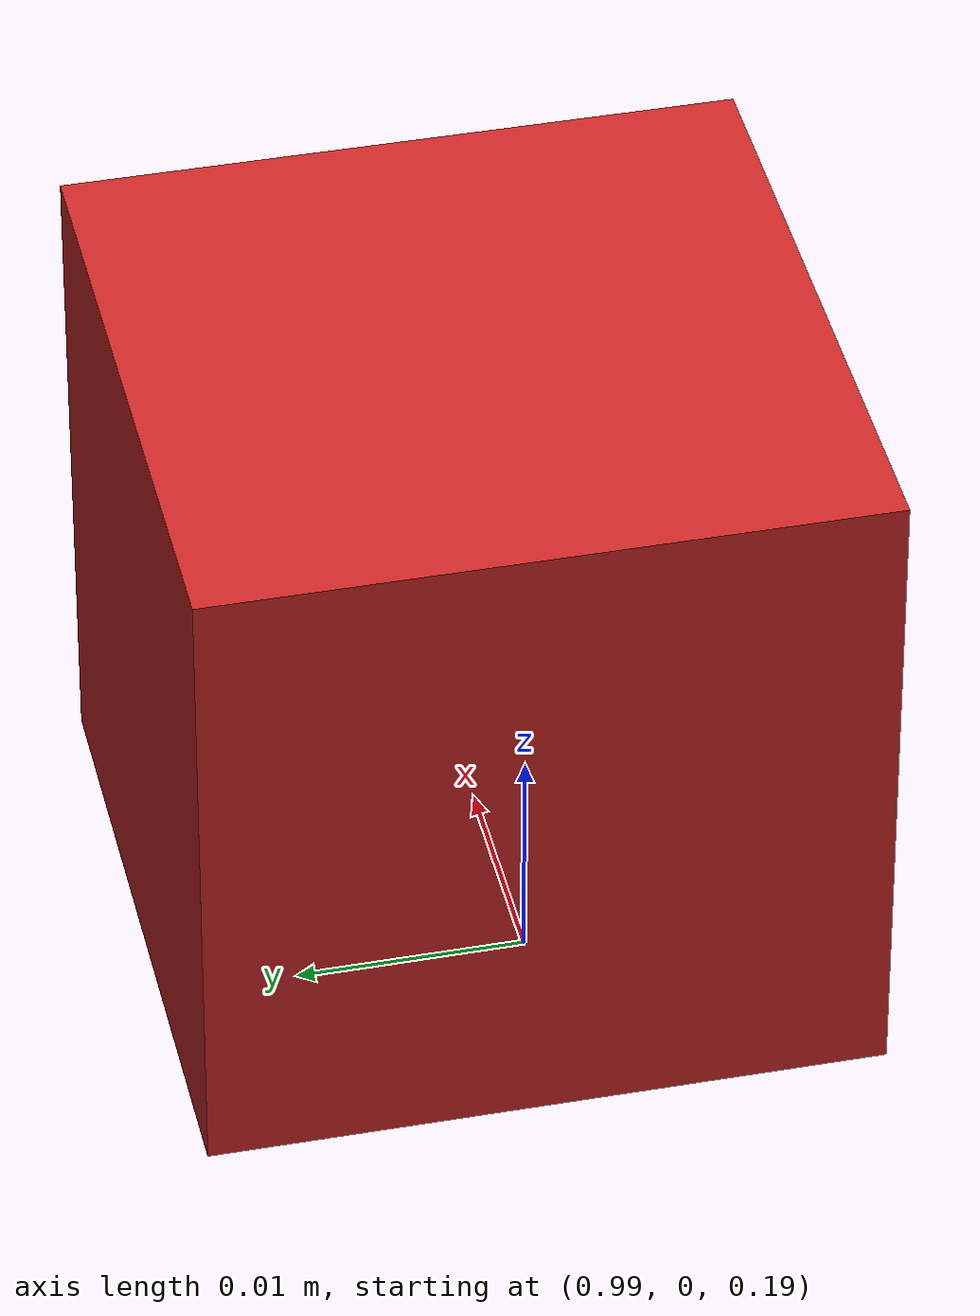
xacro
<?xml version="1.0"?>
<robot xmlns:xacro="http://www.ros.org/wiki/xacro" name="simple_cam">
    <link name="world">
    </link>

    <!-- Cameras -->
    <joint name="camera_joint1" type="fixed">
      <axis xyz="0 0 0" />
      <origin xyz="1 0 0.2" rpy="0 0 ${pi}"/>
      <parent link="world"/>
      <child link="camera_link1"/>
    </joint>

    <link name="camera_link1">
      <collision>
        <origin xyz="0 0 0" rpy="0 0 0"/>
        <geometry>
      <box size="0.03 0.03 0.03"/>
        </geometry>
      </collision>

      <visual>
        <origin xyz="0 0 0" rpy="0 0 0"/>
        <geometry>
      <box size="0.03 0.03 0.03"/>
        </geometry>
        <material name="red"/>
      </visual>

        <inertial>
          <mass value="1e-5" />
          <origin xyz="0 0 0" rpy="0 0 0"/>
          <inertia ixx="1e-6" ixy="0" ixz="0" iyy="1e-6" iyz="0" izz="1e-6" />
        </inertial>
      </link>

    <!-- cameras -->
  <gazebo reference="camera_link1">
    <sensor type="camera" name="camera1">
      <update_rate>60.0</update_rate>
      <camera name="head">
        <horizontal_fov>1.3962634</horizontal_fov>
        <image>
          <width>896</width>
          <height>504</height>
          <format>R8G8B8</format>
        </image>
        <clip>
          <near>0.02</near>
          <far>300</far>
        </clip>
        <noise>
          <type>gaussian</type>
          <mean>0.0</mean>
          <stddev>0.007</stddev>
        </noise>
      </camera>
      <plugin name="camera_controller" filename="libgazebo_ros_camera.so">
        <alwaysOn>true</alwaysOn>
        <updateRate>0.0</updateRate>
        <cameraName>panda/camera1</cameraName>
        <imageTopicName>image_raw</imageTopicName>
        <cameraInfoTopicName>camera_info</cameraInfoTopicName>
        <frameName>camera_link</frameName>
        <hackBaseline>0.07</hackBaseline>
        <distortionK1>0.0</distortionK1>
        <distortionK2>0.0</distortionK2>
        <distortionK3>0.0</distortionK3>
        <distortionT1>0.0</distortionT1>
        <distortionT2>0.0</distortionT2>
      </plugin>
    </sensor>
  </gazebo>
</robot>
